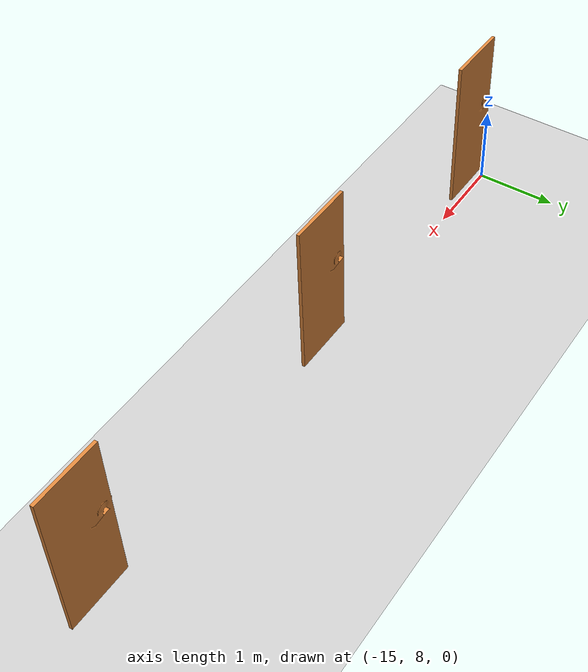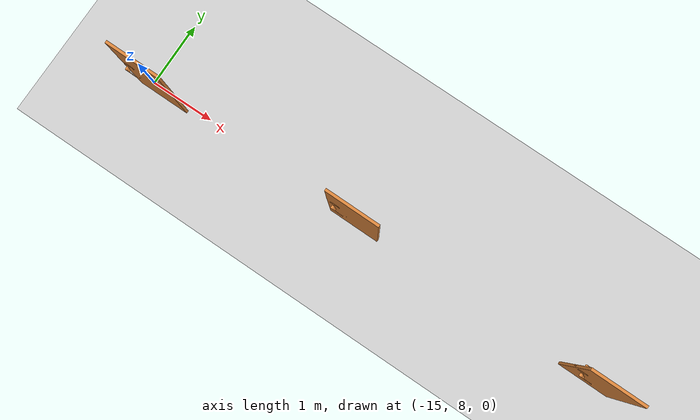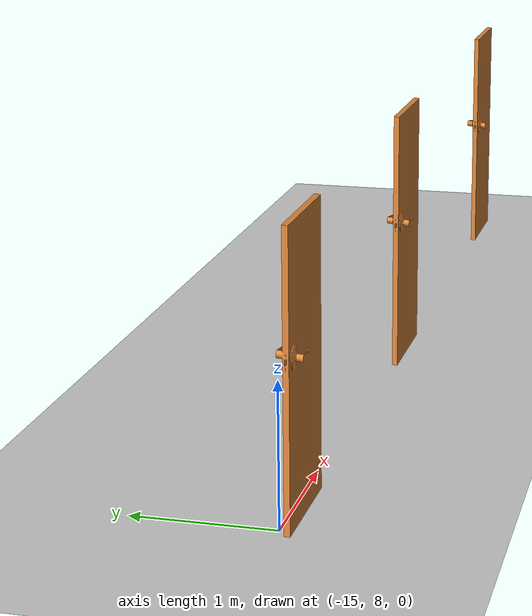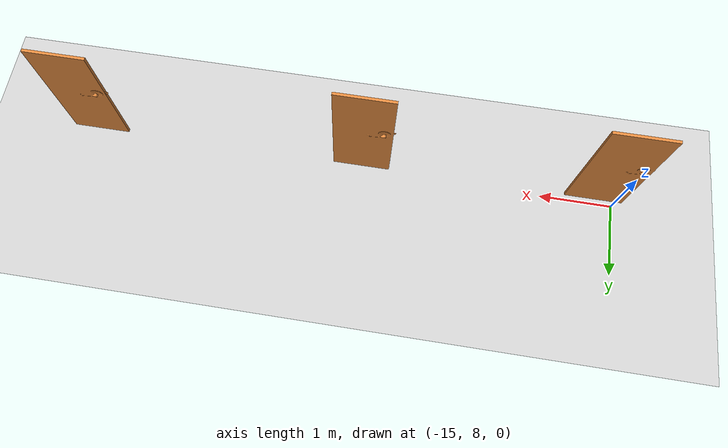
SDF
<sdf version="1.6">
 <world name="default">
  <model name="ground_plane">
   <static>1</static>
   <link name="link">
    <collision name="collision">
     <geometry><plane><normal>0 0 1</normal><size>100 100</size></plane></geometry>
     <surface>
      <contact><collide_bitmask>65535</collide_bitmask></contact>
      <friction><ode><mu>100</mu><mu2>50</mu2></ode></friction>
     </surface>
    </collision>
    <visual name="visual">
     <cast_shadows>0</cast_shadows>
     <geometry><plane><normal>0 0 1</normal><size>100 100</size></plane></geometry>
     <material>
      <script><uri>file://media/materials/scripts/gazebo.material</uri><name>Gazebo/Grey</name></script>
     </material>
    </visual>
   </link>
  </model>
  <model name="door_stand_18">
   <model name="door">
    <link name="link_0">
     <inertial>
      <mass>1</mass>
      <inertia>
       <ixx>0.166667</ixx>
       <ixy>0</ixy>
       <ixz>0</ixz>
       <iyy>0.166667</iyy>
       <iyz>0</iyz>
       <izz>0.166667</izz>
      </inertia>
     </inertial>
     <visual name="visual">
      <geometry>
       <mesh><uri>/home/msjun-xavier/Downloads/door_C.obj</uri><scale>0.002 0.002 0.001</scale></mesh>
      </geometry>
      <material>
       <lighting>1</lighting>
       <script><uri>file://media/materials/scripts/gazebo.material</uri><name>Gazebo/Grey</name></script>
       <shader type="vertex"><normal_map>__default__</normal_map></shader>
       <ambient>0.875 0.533 0.239 1</ambient>
       <diffuse>0.7 0.7 0.7 1</diffuse>
       <specular>0.01 0.01 0.01 1</specular>
       <emissive>0 0 0 1</emissive>
      </material>
     </visual>
     <collision name="collision">
      <geometry>
       <mesh><uri>/home/msjun-xavier/Downloads/door_C.obj</uri><scale>0.002 0.002 0.001</scale></mesh>
      </geometry>
      <surface>
       <friction>
        <ode><mu>1</mu><mu2>1</mu2><fdir1>0 0 0</fdir1><slip1>0</slip1><slip2>0</slip2></ode>
        <torsional>
         <coefficient>1</coefficient>
         <patch_radius>0</patch_radius>
         <surface_radius>0</surface_radius>
         <use_patch_radius>1</use_patch_radius>
         <ode><slip>0</slip></ode>
        </torsional>
       </friction>
       <bounce><restitution_coefficient>0</restitution_coefficient><threshold>1e+06</threshold></bounce>
       <contact>
        <collide_without_contact>0</collide_without_contact>
        <collide_without_contact_bitmask>1</collide_without_contact_bitmask>
        <collide_bitmask>1</collide_bitmask>
        <ode>
         <soft_cfm>0</soft_cfm>
         <soft_erp>0.2</soft_erp>
         <kp>1e+13</kp>
         <kd>1</kd>
         <max_vel>0.01</max_vel>
         <min_depth>0</min_depth>
        </ode>
        <bullet>
         <split_impulse>1</split_impulse>
         <split_impulse_penetration_threshold>-0.01</split_impulse_penetration_threshold>
         <soft_cfm>0</soft_cfm>
         <soft_erp>0.2</soft_erp>
         <kp>1e+13</kp>
         <kd>1</kd>
        </bullet>
       </contact>
      </surface>
     </collision>
    </link>
    <static>1</static>
    <pose>1e-06 5e-06 0 3.09892 1.53609 -1.61633</pose>
   </model>
   <static>0</static>
   <pose>-14.8483 7.8 1.08 0 -0 0</pose>
  </model>
  <model name="door_stand_19">
   <model name="door">
    <link name="link_0">
     <inertial>
      <mass>1</mass>
      <inertia>
       <ixx>0.166667</ixx>
       <ixy>0</ixy>
       <ixz>0</ixz>
       <iyy>0.166667</iyy>
       <iyz>0</iyz>
       <izz>0.166667</izz>
      </inertia>
     </inertial>
     <visual name="visual">
      <geometry>
       <mesh><uri>/home/msjun-xavier/Downloads/door_C.obj</uri><scale>0.002 0.002 0.001</scale></mesh>
      </geometry>
      <material>
       <lighting>1</lighting>
       <script><uri>file://media/materials/scripts/gazebo.material</uri><name>Gazebo/Grey</name></script>
       <shader type="vertex"><normal_map>__default__</normal_map></shader>
       <ambient>0.875 0.533 0.239 1</ambient>
       <diffuse>0.7 0.7 0.7 1</diffuse>
       <specular>0.01 0.01 0.01 1</specular>
       <emissive>0 0 0 1</emissive>
      </material>
     </visual>
     <collision name="collision">
      <geometry>
       <mesh><uri>/home/msjun-xavier/Downloads/door_C.obj</uri><scale>0.002 0.002 0.001</scale></mesh>
      </geometry>
      <surface>
       <friction>
        <ode><mu>1</mu><mu2>1</mu2><fdir1>0 0 0</fdir1><slip1>0</slip1><slip2>0</slip2></ode>
        <torsional>
         <coefficient>1</coefficient>
         <patch_radius>0</patch_radius>
         <surface_radius>0</surface_radius>
         <use_patch_radius>1</use_patch_radius>
         <ode><slip>0</slip></ode>
        </torsional>
       </friction>
       <bounce><restitution_coefficient>0</restitution_coefficient><threshold>1e+06</threshold></bounce>
       <contact>
        <collide_without_contact>0</collide_without_contact>
        <collide_without_contact_bitmask>1</collide_without_contact_bitmask>
        <collide_bitmask>1</collide_bitmask>
        <ode>
         <soft_cfm>0</soft_cfm>
         <soft_erp>0.2</soft_erp>
         <kp>1e+13</kp>
         <kd>1</kd>
         <max_vel>0.01</max_vel>
         <min_depth>0</min_depth>
        </ode>
        <bullet>
         <split_impulse>1</split_impulse>
         <split_impulse_penetration_threshold>-0.01</split_impulse_penetration_threshold>
         <soft_cfm>0</soft_cfm>
         <soft_erp>0.2</soft_erp>
         <kp>1e+13</kp>
         <kd>1</kd>
        </bullet>
       </contact>
      </surface>
     </collision>
    </link>
    <static>1</static>
    <pose>1e-06 5e-06 0 3.09892 1.53609 -1.61633</pose>
   </model>
   <static>0</static>
   <pose>-11.5394 7.8 1.08 0 -0 0</pose>
  </model>
  <model name="door_stand_20">
   <model name="door">
    <link name="link_0">
     <inertial>
      <mass>1</mass>
      <inertia>
       <ixx>0.166667</ixx>
       <ixy>0</ixy>
       <ixz>0</ixz>
       <iyy>0.166667</iyy>
       <iyz>0</iyz>
       <izz>0.166667</izz>
      </inertia>
     </inertial>
     <visual name="visual">
      <geometry>
       <mesh><uri>/home/msjun-xavier/Downloads/door_C.obj</uri><scale>0.002 0.002 0.001</scale></mesh>
      </geometry>
      <material>
       <lighting>1</lighting>
       <script><uri>file://media/materials/scripts/gazebo.material</uri><name>Gazebo/Grey</name></script>
       <shader type="vertex"><normal_map>__default__</normal_map></shader>
       <ambient>0.875 0.533 0.239 1</ambient>
       <diffuse>0.7 0.7 0.7 1</diffuse>
       <specular>0.01 0.01 0.01 1</specular>
       <emissive>0 0 0 1</emissive>
      </material>
     </visual>
     <collision name="collision">
      <geometry>
       <mesh><uri>/home/msjun-xavier/Downloads/door_C.obj</uri><scale>0.002 0.002 0.001</scale></mesh>
      </geometry>
      <surface>
       <friction>
        <ode><mu>1</mu><mu2>1</mu2><fdir1>0 0 0</fdir1><slip1>0</slip1><slip2>0</slip2></ode>
        <torsional>
         <coefficient>1</coefficient>
         <patch_radius>0</patch_radius>
         <surface_radius>0</surface_radius>
         <use_patch_radius>1</use_patch_radius>
         <ode><slip>0</slip></ode>
        </torsional>
       </friction>
       <bounce><restitution_coefficient>0</restitution_coefficient><threshold>1e+06</threshold></bounce>
       <contact>
        <collide_without_contact>0</collide_without_contact>
        <collide_without_contact_bitmask>1</collide_without_contact_bitmask>
        <collide_bitmask>1</collide_bitmask>
        <ode>
         <soft_cfm>0</soft_cfm>
         <soft_erp>0.2</soft_erp>
         <kp>1e+13</kp>
         <kd>1</kd>
         <max_vel>0.01</max_vel>
         <min_depth>0</min_depth>
        </ode>
        <bullet>
         <split_impulse>1</split_impulse>
         <split_impulse_penetration_threshold>-0.01</split_impulse_penetration_threshold>
         <soft_cfm>0</soft_cfm>
         <soft_erp>0.2</soft_erp>
         <kp>1e+13</kp>
         <kd>1</kd>
        </bullet>
       </contact>
      </surface>
     </collision>
    </link>
    <static>1</static>
    <pose>1e-06 5e-06 0 3.09892 1.53609 -1.61633</pose>
   </model>
   <static>0</static>
   <pose>-7.69547 7.8 1.08 0 -0 0</pose>
  </model>
 </world>
</sdf>
